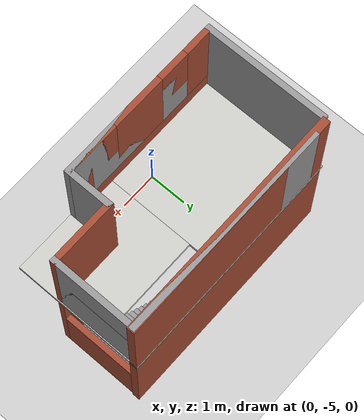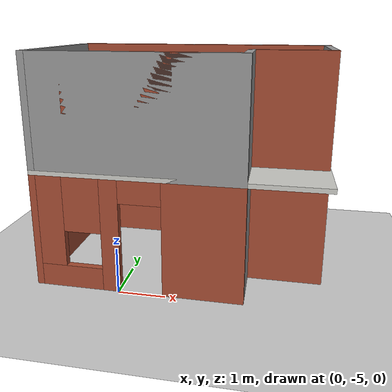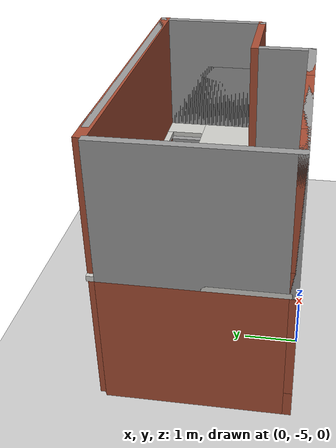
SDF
<sdf version="1.7">
 <world name="default">
  <model name="ground_plane">
   <static>1</static>
   <link name="link">
    <collision name="collision">
     <geometry><plane><normal>0 0 1</normal><size>100 100</size></plane></geometry>
     <surface><friction><ode><mu>100</mu><mu2>50</mu2></ode></friction></surface>
    </collision>
    <visual name="visual">
     <cast_shadows>0</cast_shadows>
     <geometry><plane><normal>0 0 1</normal><size>100 100</size></plane></geometry>
     <material>
      <script><uri>file://media/materials/scripts/gazebo.material</uri><name>Gazebo/Grey</name></script>
     </material>
    </visual>
   </link>
  </model>
  <model name="my_building">
   <pose>1.1975 -2.4925 0 0 -0 0</pose>
   <link name="Floor_0">
    <pose>-0 -0.802297 2.5 0 -0 0</pose>
    <visual name="Floor_0_Visual_0">
     <pose>-1.405 0 0.05 0 -0 0</pose>
     <geometry><box><size>3.315 3.38041 0.1</size></box></geometry>
     <material>
      <script><uri>file://media/materials/scripts/gazebo.material</uri><name>Gazebo/CeilingTiled</name></script>
      <ambient>1 1 1 1</ambient>
     </material>
     <meta><layer>1</layer></meta>
    </visual>
    <collision name="Floor_0_Collision_0">
     <geometry><box><size>3.315 3.38041 0.1</size></box></geometry>
     <pose>-1.405 0 0.05 0 -0 0</pose>
    </collision>
    <visual name="Floor_0_Visual_1">
     <pose>1.6575 -0.492703 0.05 0 -0 0</pose>
     <geometry><box><size>2.81 2.395 0.1</size></box></geometry>
     <material>
      <script><uri>file://media/materials/scripts/gazebo.material</uri><name>Gazebo/CeilingTiled</name></script>
      <ambient>1 1 1 1</ambient>
     </material>
     <meta><layer>1</layer></meta>
    </visual>
    <collision name="Floor_0_Collision_1">
     <geometry><box><size>2.81 2.395 0.1</size></box></geometry>
     <pose>1.6575 -0.492703 0.05 0 -0 0</pose>
    </collision>
    <visual name="Floor_0_Visual_2">
     <pose>2.7375 1.1975 0.05 0 -0 0</pose>
     <geometry><box><size>0.65 0.985407 0.1</size></box></geometry>
     <material>
      <script><uri>file://media/materials/scripts/gazebo.material</uri><name>Gazebo/CeilingTiled</name></script>
      <ambient>1 1 1 1</ambient>
     </material>
     <meta><layer>1</layer></meta>
    </visual>
    <collision name="Floor_0_Collision_2">
     <geometry><box><size>0.65 0.985407 0.1</size></box></geometry>
     <pose>2.7375 1.1975 0.05 0 -0 0</pose>
    </collision>
    <visual name="Floor_0_Visual_3">
     <pose>1.3325 1.5275 0.05 0 -0 0</pose>
     <geometry><box><size>2.16 0.325407 0.1</size></box></geometry>
     <material>
      <script><uri>file://media/materials/scripts/gazebo.material</uri><name>Gazebo/CeilingTiled</name></script>
      <ambient>1 1 1 1</ambient>
     </material>
     <meta><layer>1</layer></meta>
    </visual>
    <collision name="Floor_0_Collision_3">
     <geometry><box><size>2.16 0.325407 0.1</size></box></geometry>
     <pose>1.3325 1.5275 0.05 0 -0 0</pose>
    </collision>
   </link>
   <link name="Stairs_0">
    <visual name="Stairs_0_Visual_0">
     <pose>0.3245 0.2325 0.083333 0 -0 1.5708</pose>
     <geometry><box><size>0.66 0.144 0.166667</size></box></geometry>
     <material>
      <script><uri>file://media/materials/scripts/gazebo.material</uri><name>Gazebo/Grey</name></script>
      <ambient>1 1 1 1</ambient>
     </material>
     <meta><layer>0</layer></meta>
    </visual>
    <collision name="Stairs_0_Collision_0">
     <geometry><box><size>0.66 0.144 0.166667</size></box></geometry>
     <pose>0.3245 0.2325 0.083333 0 -0 1.5708</pose>
    </collision>
    <visual name="Stairs_0_Visual_1">
     <pose>0.4685 0.2325 0.25 0 -0 1.5708</pose>
     <geometry><box><size>0.66 0.144 0.166667</size></box></geometry>
     <material>
      <script><uri>file://media/materials/scripts/gazebo.material</uri><name>Gazebo/Grey</name></script>
      <ambient>1 1 1 1</ambient>
     </material>
     <meta><layer>0</layer></meta>
    </visual>
    <collision name="Stairs_0_Collision_1">
     <geometry><box><size>0.66 0.144 0.166667</size></box></geometry>
     <pose>0.4685 0.2325 0.25 0 -0 1.5708</pose>
    </collision>
    <visual name="Stairs_0_Visual_2">
     <pose>0.6125 0.2325 0.416667 0 -0 1.5708</pose>
     <geometry><box><size>0.66 0.144 0.166667</size></box></geometry>
     <material>
      <script><uri>file://media/materials/scripts/gazebo.material</uri><name>Gazebo/Grey</name></script>
      <ambient>1 1 1 1</ambient>
     </material>
     <meta><layer>0</layer></meta>
    </visual>
    <collision name="Stairs_0_Collision_2">
     <geometry><box><size>0.66 0.144 0.166667</size></box></geometry>
     <pose>0.6125 0.2325 0.416667 0 -0 1.5708</pose>
    </collision>
    <visual name="Stairs_0_Visual_3">
     <pose>0.7565 0.2325 0.583333 0 -0 1.5708</pose>
     <geometry><box><size>0.66 0.144 0.166667</size></box></geometry>
     <material>
      <script><uri>file://media/materials/scripts/gazebo.material</uri><name>Gazebo/Grey</name></script>
      <ambient>1 1 1 1</ambient>
     </material>
     <meta><layer>0</layer></meta>
    </visual>
    <collision name="Stairs_0_Collision_3">
     <geometry><box><size>0.66 0.144 0.166667</size></box></geometry>
     <pose>0.7565 0.2325 0.583333 0 -0 1.5708</pose>
    </collision>
    <visual name="Stairs_0_Visual_4">
     <pose>0.9005 0.2325 0.75 0 -0 1.5708</pose>
     <geometry><box><size>0.66 0.144 0.166667</size></box></geometry>
     <material>
      <script><uri>file://media/materials/scripts/gazebo.material</uri><name>Gazebo/Grey</name></script>
      <ambient>1 1 1 1</ambient>
     </material>
     <meta><layer>0</layer></meta>
    </visual>
    <collision name="Stairs_0_Collision_4">
     <geometry><box><size>0.66 0.144 0.166667</size></box></geometry>
     <pose>0.9005 0.2325 0.75 0 -0 1.5708</pose>
    </collision>
    <visual name="Stairs_0_Visual_5">
     <pose>1.0445 0.2325 0.916667 0 -0 1.5708</pose>
     <geometry><box><size>0.66 0.144 0.166667</size></box></geometry>
     <material>
      <script><uri>file://media/materials/scripts/gazebo.material</uri><name>Gazebo/Grey</name></script>
      <ambient>1 1 1 1</ambient>
     </material>
     <meta><layer>0</layer></meta>
    </visual>
    <collision name="Stairs_0_Collision_5">
     <geometry><box><size>0.66 0.144 0.166667</size></box></geometry>
     <pose>1.0445 0.2325 0.916667 0 -0 1.5708</pose>
    </collision>
    <visual name="Stairs_0_Visual_6">
     <pose>1.1885 0.2325 1.08333 0 -0 1.5708</pose>
     <geometry><box><size>0.66 0.144 0.166667</size></box></geometry>
     <material>
      <script><uri>file://media/materials/scripts/gazebo.material</uri><name>Gazebo/Grey</name></script>
      <ambient>1 1 1 1</ambient>
     </material>
     <meta><layer>0</layer></meta>
    </visual>
    <collision name="Stairs_0_Collision_6">
     <geometry><box><size>0.66 0.144 0.166667</size></box></geometry>
     <pose>1.1885 0.2325 1.08333 0 -0 1.5708</pose>
    </collision>
    <visual name="Stairs_0_Visual_7">
     <pose>1.3325 0.2325 1.25 0 -0 1.5708</pose>
     <geometry><box><size>0.66 0.144 0.166667</size></box></geometry>
     <material>
      <script><uri>file://media/materials/scripts/gazebo.material</uri><name>Gazebo/Grey</name></script>
      <ambient>1 1 1 1</ambient>
     </material>
     <meta><layer>0</layer></meta>
    </visual>
    <collision name="Stairs_0_Collision_7">
     <geometry><box><size>0.66 0.144 0.166667</size></box></geometry>
     <pose>1.3325 0.2325 1.25 0 -0 1.5708</pose>
    </collision>
    <visual name="Stairs_0_Visual_8">
     <pose>1.4765 0.2325 1.41667 0 -0 1.5708</pose>
     <geometry><box><size>0.66 0.144 0.166667</size></box></geometry>
     <material>
      <script><uri>file://media/materials/scripts/gazebo.material</uri><name>Gazebo/Grey</name></script>
      <ambient>1 1 1 1</ambient>
     </material>
     <meta><layer>0</layer></meta>
    </visual>
    <collision name="Stairs_0_Collision_8">
     <geometry><box><size>0.66 0.144 0.166667</size></box></geometry>
     <pose>1.4765 0.2325 1.41667 0 -0 1.5708</pose>
    </collision>
    <visual name="Stairs_0_Visual_9">
     <pose>1.6205 0.2325 1.58333 0 -0 1.5708</pose>
     <geometry><box><size>0.66 0.144 0.166667</size></box></geometry>
     <material>
      <script><uri>file://media/materials/scripts/gazebo.material</uri><name>Gazebo/Grey</name></script>
      <ambient>1 1 1 1</ambient>
     </material>
     <meta><layer>0</layer></meta>
    </visual>
    <collision name="Stairs_0_Collision_9">
     <geometry><box><size>0.66 0.144 0.166667</size></box></geometry>
     <pose>1.6205 0.2325 1.58333 0 -0 1.5708</pose>
    </collision>
    <visual name="Stairs_0_Visual_10">
     <pose>1.7645 0.2325 1.75 0 -0 1.5708</pose>
     <geometry><box><size>0.66 0.144 0.166667</size></box></geometry>
     <material>
      <script><uri>file://media/materials/scripts/gazebo.material</uri><name>Gazebo/Grey</name></script>
      <ambient>1 1 1 1</ambient>
     </material>
     <meta><layer>0</layer></meta>
    </visual>
    <collision name="Stairs_0_Collision_10">
     <geometry><box><size>0.66 0.144 0.166667</size></box></geometry>
     <pose>1.7645 0.2325 1.75 0 -0 1.5708</pose>
    </collision>
    <visual name="Stairs_0_Visual_11">
     <pose>1.9085 0.2325 1.91667 0 -0 1.5708</pose>
     <geometry><box><size>0.66 0.144 0.166667</size></box></geometry>
     <material>
      <script><uri>file://media/materials/scripts/gazebo.material</uri><name>Gazebo/Grey</name></script>
      <ambient>1 1 1 1</ambient>
     </material>
     <meta><layer>0</layer></meta>
    </visual>
    <collision name="Stairs_0_Collision_11">
     <geometry><box><size>0.66 0.144 0.166667</size></box></geometry>
     <pose>1.9085 0.2325 1.91667 0 -0 1.5708</pose>
    </collision>
    <visual name="Stairs_0_Visual_12">
     <pose>2.0525 0.2325 2.08333 0 -0 1.5708</pose>
     <geometry><box><size>0.66 0.144 0.166667</size></box></geometry>
     <material>
      <script><uri>file://media/materials/scripts/gazebo.material</uri><name>Gazebo/Grey</name></script>
      <ambient>1 1 1 1</ambient>
     </material>
     <meta><layer>0</layer></meta>
    </visual>
    <collision name="Stairs_0_Collision_12">
     <geometry><box><size>0.66 0.144 0.166667</size></box></geometry>
     <pose>2.0525 0.2325 2.08333 0 -0 1.5708</pose>
    </collision>
    <visual name="Stairs_0_Visual_13">
     <pose>2.1965 0.2325 2.25 0 -0 1.5708</pose>
     <geometry><box><size>0.66 0.144 0.166667</size></box></geometry>
     <material>
      <script><uri>file://media/materials/scripts/gazebo.material</uri><name>Gazebo/Grey</name></script>
      <ambient>1 1 1 1</ambient>
     </material>
     <meta><layer>0</layer></meta>
    </visual>
    <collision name="Stairs_0_Collision_13">
     <geometry><box><size>0.66 0.144 0.166667</size></box></geometry>
     <pose>2.1965 0.2325 2.25 0 -0 1.5708</pose>
    </collision>
    <visual name="Stairs_0_Visual_14">
     <pose>2.3405 0.2325 2.41667 0 -0 1.5708</pose>
     <geometry><box><size>0.66 0.144 0.166667</size></box></geometry>
     <material>
      <script><uri>file://media/materials/scripts/gazebo.material</uri><name>Gazebo/Grey</name></script>
      <ambient>1 1 1 1</ambient>
     </material>
     <meta><layer>0</layer></meta>
    </visual>
    <collision name="Stairs_0_Collision_14">
     <geometry><box><size>0.66 0.144 0.166667</size></box></geometry>
     <pose>2.3405 0.2325 2.41667 0 -0 1.5708</pose>
    </collision>
   </link>
   <link name="Wall_0">
    <collision name="Wall_0_Collision">
     <geometry><box><size>6.05 0.2 2.5</size></box></geometry>
     <pose>0 0 1.25 0 -0 0</pose>
    </collision>
    <visual name="Wall_0_Visual">
     <pose>0 0 1.25 0 -0 0</pose>
     <geometry><box><size>6.05 0.2 2.5</size></box></geometry>
     <material>
      <script><uri>file://media/materials/scripts/gazebo.material</uri><name>Gazebo/Bricks</name></script>
      <ambient>1 1 1 1</ambient>
     </material>
     <meta><layer>0</layer></meta>
    </visual>
    <pose>0.0375 0.7825 0 0 -0 0</pose>
   </link>
   <link name="Wall_1">
    <collision name="Wall_1_Collision">
     <geometry><box><size>2.25 0.15 1.5</size></box></geometry>
     <pose>0 0 0.75 0 -0 0</pose>
    </collision>
    <visual name="Wall_1_Visual">
     <pose>0 0 0.75 0 -0 0</pose>
     <geometry><box><size>2.25 0.15 1.5</size></box></geometry>
     <material>
      <script><uri>file://media/materials/scripts/gazebo.material</uri><name>Gazebo/Bricks</name></script>
      <ambient>1 1 1 1</ambient>
     </material>
     <meta><layer>0</layer></meta>
    </visual>
    <pose>2.9625 -0.2675 0 0 -0 -1.5708</pose>
   </link>
   <link name="Wall_10">
    <collision name="Wall_10_Collision">
     <geometry><box><size>1.25 0.15 2.5</size></box></geometry>
     <pose>0 0 1.25 0 -0 0</pose>
    </collision>
    <visual name="Wall_10_Visual">
     <pose>0 0 1.25 0 -0 0</pose>
     <geometry><box><size>1.25 0.15 2.5</size></box></geometry>
     <material>
      <script><uri>file://media/materials/scripts/gazebo.material</uri><name>Gazebo/Grey</name></script>
      <ambient>1 1 1 1</ambient>
     </material>
     <meta><layer>1</layer></meta>
    </visual>
    <pose>1.3625 -1.8675 2.5 0 -0 -1.5708</pose>
   </link>
   <link name="Wall_11">
    <collision name="Wall_11_Collision">
     <geometry><box><size>4.5 0.15 2.5</size></box></geometry>
     <pose>0 0 1.25 0 -0 0</pose>
    </collision>
    <visual name="Wall_11_Visual">
     <pose>0 0 1.25 0 -0 0</pose>
     <geometry><box><size>4.5 0.15 2.5</size></box></geometry>
     <material>
      <script><uri>file://media/materials/scripts/gazebo.material</uri><name>Gazebo/Grey</name></script>
      <ambient>1 1 1 1</ambient>
     </material>
     <meta><layer>1</layer></meta>
    </visual>
    <pose>-0.8125 -2.4175 2.5 0 -0 3.14159</pose>
   </link>
   <link name="Wall_12">
    <collision name="Wall_12_Collision">
     <geometry><box><size>3.25 0.15 2.5</size></box></geometry>
     <pose>0 0 1.25 0 -0 0</pose>
    </collision>
    <visual name="Wall_12_Visual">
     <pose>0 0 1.25 0 -0 0</pose>
     <geometry><box><size>3.25 0.15 2.5</size></box></geometry>
     <material>
      <script><uri>file://media/materials/scripts/gazebo.material</uri><name>Gazebo/Grey</name></script>
      <ambient>1 1 1 1</ambient>
     </material>
     <meta><layer>1</layer></meta>
    </visual>
    <pose>-2.9875 -0.8675 2.5 0 -0 1.5708</pose>
   </link>
   <link name="Wall_14">
    <collision name="Wall_14_Collision">
     <geometry><box><size>5.67008 0.15 2.5</size></box></geometry>
     <pose>0 0 1.25 0 -0 0</pose>
    </collision>
    <visual name="Wall_14_Visual">
     <pose>0 0 1.25 0 -0 0</pose>
     <geometry><box><size>5.67008 0.15 2.5</size></box></geometry>
     <material>
      <script><uri>file://media/materials/scripts/gazebo.material</uri><name>Gazebo/Grey</name></script>
      <ambient>1 1 1 1</ambient>
     </material>
     <meta><layer>1</layer></meta>
    </visual>
    <pose>0.2025 0.7975 2.5 0 -0 -0.005435</pose>
   </link>
   <link name="Wall_15">
    <collision name="Wall_15_Collision">
     <geometry><box><size>2.25 0.15 2.5</size></box></geometry>
     <pose>0 0 1.25 0 -0 0</pose>
    </collision>
    <visual name="Wall_15_Visual">
     <pose>0 0 1.25 0 -0 0</pose>
     <geometry><box><size>2.25 0.15 2.5</size></box></geometry>
     <material>
      <script><uri>file://media/materials/scripts/gazebo.material</uri><name>Gazebo/Grey</name></script>
      <ambient>1 1 1 1</ambient>
     </material>
     <meta><layer>1</layer></meta>
    </visual>
    <pose>2.9625 -0.2675 2.5 0 -0 -1.5708</pose>
   </link>
   <link name="Wall_16">
    <collision name="Wall_16_Collision">
     <geometry><box><size>1.75 0.15 2.5</size></box></geometry>
     <pose>0 0 1.25 0 -0 0</pose>
    </collision>
    <visual name="Wall_16_Visual">
     <pose>0 0 1.25 0 -0 0</pose>
     <geometry><box><size>1.75 0.15 2.5</size></box></geometry>
     <material>
      <script><uri>file://media/materials/scripts/gazebo.material</uri><name>Gazebo/Bricks</name></script>
      <ambient>1 1 1 1</ambient>
     </material>
     <meta><layer>1</layer></meta>
    </visual>
    <pose>2.1625 -1.3175 2.5 0 -0 3.14159</pose>
   </link>
   <link name="Wall_17">
    <collision name="Wall_17_Collision">
     <geometry><box><size>1.25 0.15 2.5</size></box></geometry>
     <pose>0 0 1.25 0 -0 0</pose>
    </collision>
    <visual name="Wall_17_Visual">
     <pose>0 0 1.25 0 -0 0</pose>
     <geometry><box><size>1.25 0.15 2.5</size></box></geometry>
     <material>
      <script><uri>file://media/materials/scripts/gazebo.material</uri><name>Gazebo/Grey</name></script>
      <ambient>1 1 1 1</ambient>
     </material>
     <meta><layer>1</layer></meta>
    </visual>
    <pose>1.3625 -1.8675 2.5 0 -0 -1.5708</pose>
   </link>
   <link name="Wall_18">
    <pose>-0.8125 -2.4175 2.5 0 -0 3.14159</pose>
    <visual name="Wall_18_Visual_0">
     <pose>-1.9275 0 1.25 0 -0 0</pose>
     <geometry><box><size>0.645 0.15 2.5</size></box></geometry>
     <material>
      <script><uri>file://media/materials/scripts/gazebo.material</uri><name>Gazebo/Bricks</name></script>
      <ambient>1 1 1 1</ambient>
     </material>
     <meta><layer>1</layer></meta>
    </visual>
    <collision name="Wall_18_Collision_0">
     <geometry><box><size>0.645 0.15 2.5</size></box></geometry>
     <pose>-1.9275 0 1.25 0 -0 0</pose>
    </collision>
    <visual name="Wall_18_Visual_1">
     <pose>0.3225 0 0.25 0 -0 0</pose>
     <geometry><box><size>3.855 0.15 0.5</size></box></geometry>
     <material>
      <script><uri>file://media/materials/scripts/gazebo.material</uri><name>Gazebo/Bricks</name></script>
      <ambient>1 1 1 1</ambient>
     </material>
     <meta><layer>1</layer></meta>
    </visual>
    <collision name="Wall_18_Collision_1">
     <geometry><box><size>3.855 0.15 0.5</size></box></geometry>
     <pose>0.3225 0 0.25 0 -0 0</pose>
    </collision>
    <visual name="Wall_18_Visual_2">
     <pose>-0.095 0 1.5 0 -0 0</pose>
     <geometry><box><size>1.42 0.15 2</size></box></geometry>
     <material>
      <script><uri>file://media/materials/scripts/gazebo.material</uri><name>Gazebo/Bricks</name></script>
      <ambient>1 1 1 1</ambient>
     </material>
     <meta><layer>1</layer></meta>
    </visual>
    <collision name="Wall_18_Collision_2">
     <geometry><box><size>1.42 0.15 2</size></box></geometry>
     <pose>-0.095 0 1.5 0 -0 0</pose>
    </collision>
    <visual name="Wall_18_Visual_3">
     <pose>1.8325 0 1.5 0 -0 0</pose>
     <geometry><box><size>0.835 0.15 2</size></box></geometry>
     <material>
      <script><uri>file://media/materials/scripts/gazebo.material</uri><name>Gazebo/Bricks</name></script>
      <ambient>1 1 1 1</ambient>
     </material>
     <meta><layer>1</layer></meta>
    </visual>
    <collision name="Wall_18_Collision_3">
     <geometry><box><size>0.835 0.15 2</size></box></geometry>
     <pose>1.8325 0 1.5 0 -0 0</pose>
    </collision>
    <visual name="Wall_18_Visual_4">
     <pose>-1.205 0 1.9 0 -0 0</pose>
     <geometry><box><size>0.8 0.15 1.2</size></box></geometry>
     <material>
      <script><uri>file://media/materials/scripts/gazebo.material</uri><name>Gazebo/Bricks</name></script>
      <ambient>1 1 1 1</ambient>
     </material>
     <meta><layer>1</layer></meta>
    </visual>
    <collision name="Wall_18_Collision_4">
     <geometry><box><size>0.8 0.15 1.2</size></box></geometry>
     <pose>-1.205 0 1.9 0 -0 0</pose>
    </collision>
    <visual name="Wall_18_Visual_5">
     <pose>1.015 0 1.9 0 -0 0</pose>
     <geometry><box><size>0.8 0.15 1.2</size></box></geometry>
     <material>
      <script><uri>file://media/materials/scripts/gazebo.material</uri><name>Gazebo/Bricks</name></script>
      <ambient>1 1 1 1</ambient>
     </material>
     <meta><layer>1</layer></meta>
    </visual>
    <collision name="Wall_18_Collision_5">
     <geometry><box><size>0.8 0.15 1.2</size></box></geometry>
     <pose>1.015 0 1.9 0 -0 0</pose>
    </collision>
   </link>
   <link name="Wall_19">
    <collision name="Wall_19_Collision">
     <geometry><box><size>3.25 0.15 2.5</size></box></geometry>
     <pose>0 0 1.25 0 -0 0</pose>
    </collision>
    <visual name="Wall_19_Visual">
     <pose>0 0 1.25 0 -0 0</pose>
     <geometry><box><size>3.25 0.15 2.5</size></box></geometry>
     <material>
      <script><uri>file://media/materials/scripts/gazebo.material</uri><name>Gazebo/Bricks</name></script>
      <ambient>1 1 1 1</ambient>
     </material>
     <meta><layer>1</layer></meta>
    </visual>
    <pose>-2.9875 -0.8675 2.5 0 -0 1.5708</pose>
   </link>
   <link name="Wall_2">
    <collision name="Wall_2_Collision">
     <geometry><box><size>1.75 0.15 2.5</size></box></geometry>
     <pose>0 0 1.25 0 -0 0</pose>
    </collision>
    <visual name="Wall_2_Visual">
     <pose>0 0 1.25 0 -0 0</pose>
     <geometry><box><size>1.75 0.15 2.5</size></box></geometry>
     <material>
      <script><uri>file://media/materials/scripts/gazebo.material</uri><name>Gazebo/Bricks</name></script>
      <ambient>1 1 1 1</ambient>
     </material>
     <meta><layer>0</layer></meta>
    </visual>
    <pose>2.1625 -1.3175 0 0 -0 3.14159</pose>
   </link>
   <link name="Wall_3">
    <collision name="Wall_3_Collision">
     <geometry><box><size>1.25 0.15 2.5</size></box></geometry>
     <pose>0 0 1.25 0 -0 0</pose>
    </collision>
    <visual name="Wall_3_Visual">
     <pose>0 0 1.25 0 -0 0</pose>
     <geometry><box><size>1.25 0.15 2.5</size></box></geometry>
     <material>
      <script><uri>file://media/materials/scripts/gazebo.material</uri><name>Gazebo/Grey</name></script>
      <ambient>1 1 1 1</ambient>
     </material>
     <meta><layer>0</layer></meta>
    </visual>
    <pose>1.3625 -1.8675 0 0 -0 -1.5708</pose>
   </link>
   <link name="Wall_4">
    <pose>-0.8125 -2.4175 0 0 -0 3.14159</pose>
    <visual name="Wall_4_Visual_0">
     <pose>-1.4025 0 1.25 0 -0 0</pose>
     <geometry><box><size>1.695 0.15 2.5</size></box></geometry>
     <material>
      <script><uri>file://media/materials/scripts/gazebo.material</uri><name>Gazebo/Bricks</name></script>
      <ambient>1 1 1 1</ambient>
     </material>
     <meta><layer>0</layer></meta>
    </visual>
    <collision name="Wall_4_Collision_0">
     <geometry><box><size>1.695 0.15 2.5</size></box></geometry>
     <pose>-1.4025 0 1.25 0 -0 0</pose>
    </collision>
    <visual name="Wall_4_Visual_1">
     <pose>0.54 0 1.25 0 -0 0</pose>
     <geometry><box><size>0.39 0.15 2.5</size></box></geometry>
     <material>
      <script><uri>file://media/materials/scripts/gazebo.material</uri><name>Gazebo/Bricks</name></script>
      <ambient>1 1 1 1</ambient>
     </material>
     <meta><layer>0</layer></meta>
    </visual>
    <collision name="Wall_4_Collision_1">
     <geometry><box><size>0.39 0.15 2.5</size></box></geometry>
     <pose>0.54 0 1.25 0 -0 0</pose>
    </collision>
    <visual name="Wall_4_Visual_2">
     <pose>1.4925 0 0.25 0 -0 0</pose>
     <geometry><box><size>1.515 0.15 0.5</size></box></geometry>
     <material>
      <script><uri>file://media/materials/scripts/gazebo.material</uri><name>Gazebo/Bricks</name></script>
      <ambient>1 1 1 1</ambient>
     </material>
     <meta><layer>0</layer></meta>
    </visual>
    <collision name="Wall_4_Collision_2">
     <geometry><box><size>1.515 0.15 0.5</size></box></geometry>
     <pose>1.4925 0 0.25 0 -0 0</pose>
    </collision>
    <visual name="Wall_4_Visual_3">
     <pose>1.8925 0 1.5 0 -0 0</pose>
     <geometry><box><size>0.715 0.15 2</size></box></geometry>
     <material>
      <script><uri>file://media/materials/scripts/gazebo.material</uri><name>Gazebo/Bricks</name></script>
      <ambient>1 1 1 1</ambient>
     </material>
     <meta><layer>0</layer></meta>
    </visual>
    <collision name="Wall_4_Collision_3">
     <geometry><box><size>0.715 0.15 2</size></box></geometry>
     <pose>1.8925 0 1.5 0 -0 0</pose>
    </collision>
    <visual name="Wall_4_Visual_4">
     <pose>1.135 0 1.9 0 -0 0</pose>
     <geometry><box><size>0.8 0.15 1.2</size></box></geometry>
     <material>
      <script><uri>file://media/materials/scripts/gazebo.material</uri><name>Gazebo/Bricks</name></script>
      <ambient>1 1 1 1</ambient>
     </material>
     <meta><layer>0</layer></meta>
    </visual>
    <collision name="Wall_4_Collision_4">
     <geometry><box><size>0.8 0.15 1.2</size></box></geometry>
     <pose>1.135 0 1.9 0 -0 0</pose>
    </collision>
    <visual name="Wall_4_Visual_5">
     <pose>-0.105 0 2.25 0 -0 0</pose>
     <geometry><box><size>0.9 0.15 0.5</size></box></geometry>
     <material>
      <script><uri>file://media/materials/scripts/gazebo.material</uri><name>Gazebo/Bricks</name></script>
      <ambient>1 1 1 1</ambient>
     </material>
     <meta><layer>0</layer></meta>
    </visual>
    <collision name="Wall_4_Collision_5">
     <geometry><box><size>0.9 0.15 0.5</size></box></geometry>
     <pose>-0.105 0 2.25 0 -0 0</pose>
    </collision>
   </link>
   <link name="Wall_5">
    <collision name="Wall_5_Collision">
     <geometry><box><size>3.25 0.15 2.5</size></box></geometry>
     <pose>0 0 1.25 0 -0 0</pose>
    </collision>
    <visual name="Wall_5_Visual">
     <pose>0 0 1.25 0 -0 0</pose>
     <geometry><box><size>3.25 0.15 2.5</size></box></geometry>
     <material>
      <script><uri>file://media/materials/scripts/gazebo.material</uri><name>Gazebo/Bricks</name></script>
      <ambient>1 1 1 1</ambient>
     </material>
     <meta><layer>0</layer></meta>
    </visual>
    <pose>-2.9875 -0.8675 0 0 -0 1.5708</pose>
   </link>
   <link name="Wall_7">
    <collision name="Wall_7_Collision">
     <geometry><box><size>6.05 0.2 2.5</size></box></geometry>
     <pose>0 0 1.25 0 -0 0</pose>
    </collision>
    <visual name="Wall_7_Visual">
     <pose>0 0 1.25 0 -0 0</pose>
     <geometry><box><size>6.05 0.2 2.5</size></box></geometry>
     <material>
      <script><uri>file://media/materials/scripts/gazebo.material</uri><name>Gazebo/Bricks</name></script>
      <ambient>1 1 1 1</ambient>
     </material>
     <meta><layer>1</layer></meta>
    </visual>
    <pose>0.0375 0.7825 2.5 0 -0 0</pose>
   </link>
   <link name="Wall_8">
    <collision name="Wall_8_Collision">
     <geometry><box><size>2.25 0.15 1.5</size></box></geometry>
     <pose>0 0 0.75 0 -0 0</pose>
    </collision>
    <visual name="Wall_8_Visual">
     <pose>0 0 0.75 0 -0 0</pose>
     <geometry><box><size>2.25 0.15 1.5</size></box></geometry>
     <material>
      <script><uri>file://media/materials/scripts/gazebo.material</uri><name>Gazebo/Grey</name></script>
      <ambient>1 1 1 1</ambient>
     </material>
     <meta><layer>1</layer></meta>
    </visual>
    <pose>2.9625 -0.2675 2.5 0 -0 -1.5708</pose>
   </link>
   <link name="Wall_9">
    <collision name="Wall_9_Collision">
     <geometry><box><size>1.75 0.15 2.5</size></box></geometry>
     <pose>0 0 1.25 0 -0 0</pose>
    </collision>
    <visual name="Wall_9_Visual">
     <pose>0 0 1.25 0 -0 0</pose>
     <geometry><box><size>1.75 0.15 2.5</size></box></geometry>
     <material>
      <script><uri>file://media/materials/scripts/gazebo.material</uri><name>Gazebo/Grey</name></script>
      <ambient>1 1 1 1</ambient>
     </material>
     <meta><layer>1</layer></meta>
    </visual>
    <pose>2.1625 -1.3175 2.5 0 -0 3.14159</pose>
   </link>
   <static>1</static>
  </model>
 </world>
</sdf>
